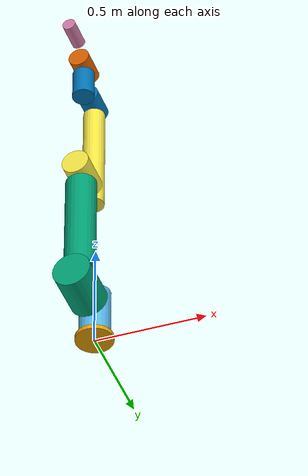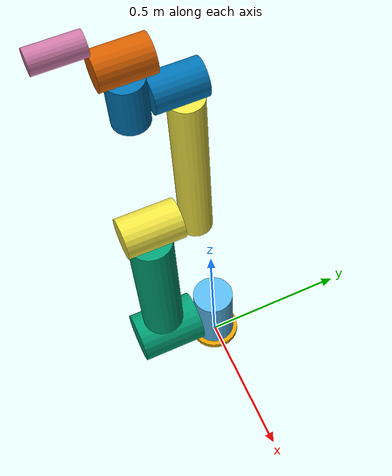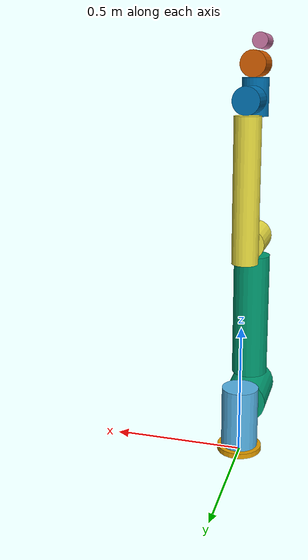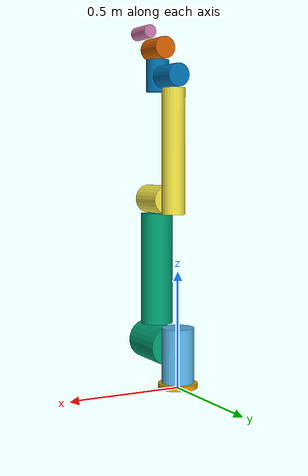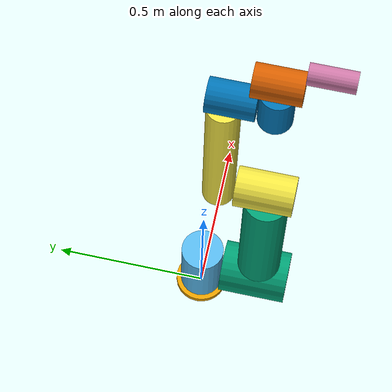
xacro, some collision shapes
<?xml version="1.0"?>
<robot xmlns:xacro="http://www.ros.org/wiki/xacro">

  <xacro:arg name="ns" default="" />
  <xacro:arg name="prefix" default="" />
  <xacro:arg name="color" default="darkolive" />
  <xacro:arg name="trans_hw_iface" default="hardware_interface/PositionJointInterface" />

  <xacro:include filename="macro.transmission.xacro" />
  <xacro:include filename="macro.materials.xacro" />

  <!-- tm12s -->
  <!-- If the user want to use newly generated named robot description file as user_defined.urdf.xacro, -->
  <!-- you must modify 'macro.tm12s-nominal.urdf.xacro' to 'user_defined.urdf.xacro'  -->
  <xacro:include filename="macro.tm12s-nominal.urdf.xacro" />

  <xacro:tmr_transmission prefix="$(arg prefix)" hw_iface="$(arg trans_hw_iface)" />
  <xacro:tmr_materials/>

  <!-- Arm -->
  <xacro:property name="color" value="$(arg color)"/>
  <xacro:if value="${color == 'none'}">
    <xacro:tm12s ns="$(arg ns)" prefix="$(arg prefix)" />
  </xacro:if>

  <!-- Arm.color.stl -->
  <xacro:unless value="${color == 'none'}">
    <xacro:tm12s ns="$(arg ns)" prefix="$(arg prefix)" color="${color}" format="obj" />
  </xacro:unless>

</robot>

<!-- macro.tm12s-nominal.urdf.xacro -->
<robot xmlns:xacro="http://www.ros.org/wiki/xacro">

  <xacro:include filename="macro.inertial.xacro" />

  <xacro:macro name="tm12s" params="ns prefix color:=none format:=obj
    joint_1_lower_limit:=${radians(-360)} joint_1_upper_limit:=${radians(360)}
    joint_2_lower_limit:=${radians(-360)} joint_2_upper_limit:=${radians(360)}
    joint_3_lower_limit:=${radians(-162)} joint_3_upper_limit:=${radians(162)}
    joint_4_lower_limit:=${radians(-360)} joint_4_upper_limit:=${radians(360)}
    joint_5_lower_limit:=${radians(-360)} joint_5_upper_limit:=${radians(360)}
    joint_6_lower_limit:=${radians(-360)} joint_6_upper_limit:=${radians(360)}

    joint_1_velocity_limit:=${radians(130)}
    joint_2_velocity_limit:=${radians(120)}
    joint_3_velocity_limit:=${radians(210)}
    joint_4_velocity_limit:=${radians(225)}
    joint_5_velocity_limit:=${radians(225)}
    joint_6_velocity_limit:=${radians(450)}

    joint_1_effort_limit:=${350}
    joint_2_effort_limit:=${350}
    joint_3_effort_limit:=${170}
    joint_4_effort_limit:=${45}
    joint_5_effort_limit:=${45}
    joint_6_effort_limit:=${45}

    safety_limits:=false
    safety_pos_margin:=0.15
    safety_k_position:=20">

    <xacro:property name="damping_factor" value="0.000"/>
    <xacro:property name="d1" value="${damping_factor*0.1}"/>
    <xacro:property name="d2" value="${damping_factor*0.1}"/>
    <xacro:property name="d3" value="${damping_factor*0.1}"/>
    <xacro:property name="d4" value="${damping_factor*0.1}"/>
    <xacro:property name="d5" value="${damping_factor*0.1}"/>
    <xacro:property name="d6" value="${damping_factor*0.1}"/>

    <xacro:property name="friction_factor" value="0.000"/>
    <xacro:property name="f1" value="${friction_factor*0.1}"/>
    <xacro:property name="f2" value="${friction_factor*0.1}"/>
    <xacro:property name="f3" value="${friction_factor*0.1}"/>
    <xacro:property name="f4" value="${friction_factor*0.1}"/>
    <xacro:property name="f5" value="${friction_factor*0.1}"/>
    <xacro:property name="f6" value="${friction_factor*0.1}"/>

    <!-- Inertia parameters -->
    <xacro:property name="mass_0" value="1.0" />
    <xacro:property name="mass_1" value="8.200" />
    <xacro:property name="mass_2" value="15.017" />
    <xacro:property name="mass_3" value="3.329" />
    <xacro:property name="mass_4" value="1.770" />
    <xacro:property name="mass_5" value="1.880" />
    <xacro:property name="mass_6" value="0.720" />

    <xacro:property name="unit_factor" value="0.000001"/>
    <xacro:property name="ixx_1" value="${25963.078*unit_factor}" />
    <xacro:property name="ixx_2" value="${56178.979*unit_factor}" />
    <xacro:property name="ixx_3" value="${4694.5431*unit_factor}" />
    <xacro:property name="ixx_4" value="${2046.0318*unit_factor}" />
    <xacro:property name="ixx_5" value="${2046.0318*unit_factor}" />
    <xacro:property name="ixx_6" value="${703.44734*unit_factor}" />

    <xacro:property name="iyy_1" value="${37671.229*unit_factor}" />
    <xacro:property name="iyy_2" value="${1212610.4*unit_factor}" />
    <xacro:property name="iyy_3" value="${134098.54*unit_factor}" />
    <xacro:property name="iyy_4" value="${3171.8293*unit_factor}" />
    <xacro:property name="iyy_5" value="${3171.8293*unit_factor}" />
    <xacro:property name="iyy_6" value="${1711.0225*unit_factor}" />

    <xacro:property name="izz_1" value="${38856.370*unit_factor}" />
    <xacro:property name="izz_2" value="${1231270.0*unit_factor}" />
    <xacro:property name="izz_3" value="${135525.91*unit_factor}" />
    <xacro:property name="izz_4" value="${3478.9518*unit_factor}" />
    <xacro:property name="izz_5" value="${3478.9518*unit_factor}" />
    <xacro:property name="izz_6" value="${1854.4783*unit_factor}" />
    <!-- Link 0-->
    <link name="${prefix}link_0">
      <!-- Visual -->
      <visual>
        <origin rpy="0.000000 -0.000000 0.000000" xyz="0.000000 0.000000 0.012" />
        <geometry>
          <cylinder radius="0.085" length="0.02"/>
        </geometry>
        <material name="${color}" />
      </visual>
      <!-- Collision -->
      <collision>
        <origin rpy="0.000000 -0.000000 0.000000" xyz="0.000000 0.000000 0.012" />
        <geometry>
          <cylinder radius="0.085" length="0.02"/>
        </geometry>
      </collision>
      <!-- Inertial -->
      <xacro:cylinder_inertial_z radius="0.06" length="0.05" mass="${mass_0}">
        <origin rpy="0.000000 0.000000 0.000000" xyz="0.000000 0.000000 0.000000" />
      </xacro:cylinder_inertial_z>
    </link>

    <!-- Joint 1 -->
    <joint name="${prefix}joint_1" type="revolute">
      <parent link="${prefix}link_0" />
      <child link="${prefix}link_1" />
      <origin rpy="0.000000 -0.000000 0.000000" xyz="0.000000 0.000000 0.165200" />
      <axis xyz="0 0 1" />
      <limit lower="${joint_1_lower_limit}" upper="${joint_1_upper_limit}" velocity="${joint_1_velocity_limit}" effort="${joint_1_effort_limit}" />
      <xacro:if value="${safety_limits}">
        <safety_controller soft_lower_limit="${joint_1_lower_limit + safety_pos_margin}" soft_upper_limit="${joint_1_upper_limit - safety_pos_margin}" k_position="${safety_k_position}" k_velocity="0.0" />
      </xacro:if>
      <dynamics damping="${d1}" friction="${f1}" />
    </joint>
    <!-- Link 1 -->
    <link name="${prefix}link_1">
      <!-- Visual -->
      <visual>
        <origin rpy="0.000000 0.000000 0.000000" xyz="0.000000 0.000000 -0.023" />
        <geometry>
          <cylinder radius="0.07" length="0.235"/>
        </geometry>
        <material name="${color}" />
      </visual>

      <!-- Collision -->
      <collision>
        <origin rpy="0.000000 0.000000 0.000000" xyz="0.000000 0.000000 -0.023" />
        <geometry>
          <cylinder radius="0.07" length="0.235"/>
        </geometry>
      </collision>
      <!-- Inertial -->
      <inertial>
        <origin rpy="0.000000 0.000000 0.000000" xyz="0.000000 0.000000 0.000000" />
        <mass value="${mass_1}" />
        <inertia ixx="${ixx_1}" ixy="0.000000" ixz="0.000000" iyy="${iyy_1}" iyz="0.000000" izz="${izz_1}" />
      </inertial>
    </link>
    <!-- Joint 2 -->
    <joint name="${prefix}joint_2" type="revolute">
      <parent link="${prefix}link_1" />
      <child link="${prefix}link_2" />
      <origin rpy="-1.570796 -1.570796 0.000000" xyz="0.000000 0.000000 0.000000" />
      <axis xyz="0 0 1" />
      <limit lower="${joint_2_lower_limit}" upper="${joint_2_upper_limit}" velocity="${joint_2_velocity_limit}" effort="${joint_2_effort_limit}" />
      <xacro:if value="${safety_limits}">
        <safety_controller soft_lower_limit="${joint_2_lower_limit + safety_pos_margin}" soft_upper_limit="${joint_2_upper_limit - safety_pos_margin}" k_position="${safety_k_position}" k_velocity="0.0" />
      </xacro:if>
      <dynamics damping="${d2}" friction="${f2}" />
    </joint>
    <!-- Link 2 -->
    <link name="${prefix}link_2">
      <!-- Visual -->
      <visual>
        <origin rpy="0.000000 1.57079632679 0.000000" xyz="0.330000 0.000000 -0.19" />
        <geometry>
          <cylinder radius="0.07" length="0.4875"/>
        </geometry>
        <material name="${color}" />
      </visual>
      <visual>
        <origin rpy="0.000000 0.000000 0.000000" xyz="0.000000 0.000000 -0.1825" />
        <geometry>
          <cylinder radius="0.085" length="0.22"/>
        </geometry>
        <material name="${color}" />
      </visual>
      <!-- Collision -->
      <collision>
        <origin rpy="0.000000 0.000000 0.000000" xyz="0.000000 0.000000 -0.1825" />
        <geometry>
          <cylinder radius="0.085" length="0.22"/>
        </geometry>
      </collision>
      <collision>
        <origin rpy="0.000000 1.57079632679 0.000000" xyz="0.330000 0.000000 -0.19" />
        <geometry>
          <cylinder radius="0.07" length="0.4875"/>
        </geometry>
      </collision>

      <!-- Inertial -->
      <inertial>
        <origin rpy="0.000000 0.000000 0.000000" xyz="0.000000 0.000000 0.000000" />
        <mass value="${mass_2}" />
        <inertia ixx="${ixx_2}" ixy="0.000000" ixz="0.000000" iyy="${iyy_2}" iyz="0.000000" izz="${izz_2}" />
      </inertial>
    </link>
    <!-- Joint 3 -->
    <joint name="${prefix}joint_3" type="revolute">
      <parent link="${prefix}link_2" />
      <child link="${prefix}link_3" />
      <origin rpy="0.000000 -0.000000 0.000000" xyz="0.636100 0.000000 0.000000" />
      <axis xyz="0 0 1" />
      <limit lower="${joint_3_lower_limit}" upper="${joint_3_upper_limit}" velocity="${joint_3_velocity_limit}" effort="${joint_3_effort_limit}" />
      <xacro:if value="${safety_limits}">
        <safety_controller soft_lower_limit="${joint_3_lower_limit + safety_pos_margin}" soft_upper_limit="${joint_3_upper_limit - safety_pos_margin}" k_position="${safety_k_position}" k_velocity="0.0" />
      </xacro:if>
      <dynamics damping="${d3}" friction="${f3}" />
    </joint>
    <!-- Link 3 -->
    <link name="${prefix}link_3">
      <!-- Visual -->
      <visual>
        <material name="${color}" />
        <origin rpy="0.000000 1.57079632679 0.000000" xyz="0.21 0.000000 -0.04" />
        <geometry>
          <cylinder radius="0.05" length="0.54"/>
        </geometry>
      </visual>
      <visual>
        <origin rpy="0.000000 0.000000 0.000000" xyz="0.000000 0.000000 -0.1825" />
        <geometry>
          <cylinder radius="0.062" length="0.18"/>
        </geometry>
        <material name="${color}" />
      </visual>
      <!-- Collision -->
      <collision>
        <origin rpy="0.000000 0.000000 0.000000" xyz="0.000000 0.000000 -0.1825" />
        <geometry>
          <cylinder radius="0.062" length="0.18"/>
        </geometry>
      </collision>
      <collision>
        <origin rpy="0.000000 1.57079632679 0.000000" xyz="0.21 0.000000 -0.04" />
        <geometry>
          <cylinder radius="0.05" length="0.54"/>
        </geometry>
      </collision>
      <!-- Inertial -->
      <inertial>
        <origin rpy="0.000000 0.000000 0.000000" xyz="0.000000 0.000000 0.000000" />
        <mass value="${mass_3}" />
        <inertia ixx="${ixx_3}" ixy="0.000000" ixz="0.000000" iyy="${iyy_3}" iyz="0.000000" izz="${izz_3}" />
      </inertial>
    </link>
    <!-- Joint 4 -->
    <joint name="${prefix}joint_4" type="revolute">
      <parent link="${prefix}link_3" />
      <child link="${prefix}link_4" />
      <origin rpy="0.000000 -0.000000 1.570796" xyz="0.532400 0.000000 -0.181800" />
      <axis xyz="0 0 1" />
      <limit lower="${joint_4_lower_limit}" upper="${joint_4_upper_limit}" velocity="${joint_4_velocity_limit}" effort="${joint_4_effort_limit}" />
      <xacro:if value="${safety_limits}">
        <safety_controller soft_lower_limit="${joint_4_lower_limit + safety_pos_margin}" soft_upper_limit="${joint_4_upper_limit - safety_pos_margin}" k_position="${safety_k_position}" k_velocity="0.0" />
      </xacro:if>
      <dynamics damping="${d4}" friction="${f4}" />
    </joint>
    <!-- Link 4 -->
    <link name="${prefix}link_4">
      <!-- Visual -->
      <visual>
        <origin rpy="1.57079632679 0.000000 0.000000" xyz="0.000000 -0.00800 -0.001" />
        <geometry>
          <cylinder radius="0.05" length="0.14"/>
        </geometry>
        <material name="${color}" />
      </visual>
      <visual>
        <origin rpy="0.000000 0.000000 0.000000" xyz="0.000000 0.000000 0.12" />
        <geometry>
          <cylinder radius="0.05" length="0.14"/>
        </geometry>
        <material name="${color}" />
      </visual>
      <!-- Collision -->
      <collision>
        <origin rpy="1.57079632679 0.000000 0.000000" xyz="0.000000 -0.00800 -0.001" />
        <geometry>
          <cylinder radius="0.05" length="0.14"/>
        </geometry>
      </collision>
      <collision>
        <origin rpy="0.000000 0.000000 0.000000" xyz="0.000000 0.000000 0.12" />
        <geometry>
          <cylinder radius="0.05" length="0.14"/>
        </geometry>
      </collision>
      <!-- Inertial -->
      <inertial>
        <origin rpy="0.000000 0.000000 0.000000" xyz="0.000000 0.000000 0.000000" />
        <mass value="${mass_4}" />
        <inertia ixx="${ixx_4}" ixy="0.000000" ixz="0.000000" iyy="${iyy_4}" iyz="0.000000" izz="${izz_4}" />
      </inertial>
    </link>
    <!-- Joint 5 -->
    <joint name="${prefix}joint_5" type="revolute">
      <parent link="${prefix}link_4" />
      <child link="${prefix}link_5" />
      <origin rpy="1.570796 -0.000000 0.000000" xyz="0.000000 -0.131500 0.000000" />
      <axis xyz="0 0 1" />
      <limit lower="${joint_5_lower_limit}" upper="${joint_5_upper_limit}" velocity="${joint_5_velocity_limit}" effort="${joint_5_effort_limit}" />
      <xacro:if value="${safety_limits}">
        <safety_controller soft_lower_limit="${joint_5_lower_limit + safety_pos_margin}" soft_upper_limit="${joint_5_upper_limit - safety_pos_margin}" k_position="${safety_k_position}" k_velocity="0.0" />
      </xacro:if>
      <dynamics damping="${d5}" friction="${f5}" />
    </joint>
    <!-- Link 5 -->
    <link name="${prefix}link_5">
      <!-- Visual -->
      <visual>
        <origin rpy="1.57079632679 0.000000 0.000000" xyz="0.000000 0.000000 -0.005" />
        <geometry>
          <cylinder radius="0.048" length="0.14"/>
        </geometry>
        <material name="${color}" />
      </visual>
      <!-- Collision -->
      <collision>
        <origin rpy="1.57079632679 0.000000 0.000000" xyz="0.000000 -0.030000 -0.005" />
        <geometry>
          <cylinder radius="0.048" length="0.18"/>
        </geometry>
      </collision>
      <!-- Inertial -->
      <inertial>
        <origin rpy="0.000000 0.000000 0.000000" xyz="0.000000 0.000000 0.000000" />
        <mass value="${mass_5}" />
        <inertia ixx="${ixx_5}" ixy="0.000000" ixz="0.000000" iyy="${iyy_5}" iyz="0.000000" izz="${izz_5}" />
      </inertial>
    </link>
    <!-- Joint 6 -->
    <joint name="${prefix}joint_6" type="revolute">
      <parent link="${prefix}link_5" />
      <child link="${prefix}link_6" />
      <origin rpy="1.570796 -0.000000 0.000000" xyz="0.000000 -0.134950 0.000000" />
      <axis xyz="0 0 1" />
      <limit lower="${joint_6_lower_limit}" upper="${joint_6_upper_limit}" velocity="${joint_6_velocity_limit}" effort="${joint_6_effort_limit}" />
      <xacro:if value="${safety_limits}">
        <safety_controller soft_lower_limit="${joint_6_lower_limit + safety_pos_margin}" soft_upper_limit="${joint_6_upper_limit - safety_pos_margin}" k_position="${safety_k_position}" k_velocity="0.0" />
      </xacro:if>
      <dynamics damping="${d6}" friction="${f6}" />
    </joint>
    <!-- Link 6 -->
    <link name="${prefix}link_6">
      <!-- Visual -->
      <visual>
        <geometry>
          <mesh filename="file://$(find amr_visualisation)/meshes/tm12s-io.${format}" />
        </geometry>
        <material name="${color}" />
      </visual>
      <!-- Collision -->
      <collision>
        <origin rpy="0.000000 0.000000 0.000000" xyz="0.000000 0.080000 0" />
        <geometry>
          <cylinder radius="0.03" length="0.13"/>
        </geometry>
      </collision>
      <!-- Inertial -->
      <inertial>
        <origin rpy="0.000000 0.000000 0.000000" xyz="0.000000 0.000000 0.000000" />
        <mass value="${mass_6}" />
        <inertia ixx="${ixx_6}" ixy="0.000000" ixz="0.000000" iyy="${iyy_6}" iyz="0.000000" izz="${izz_6}" />
      </inertial>
    </link>

  </xacro:macro>
</robot>
